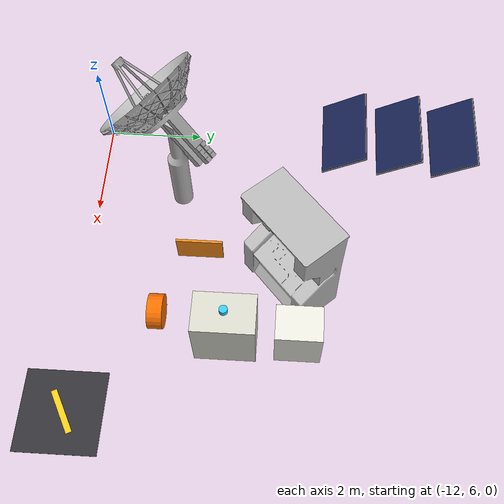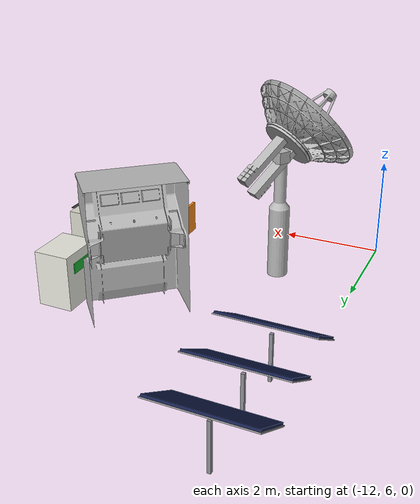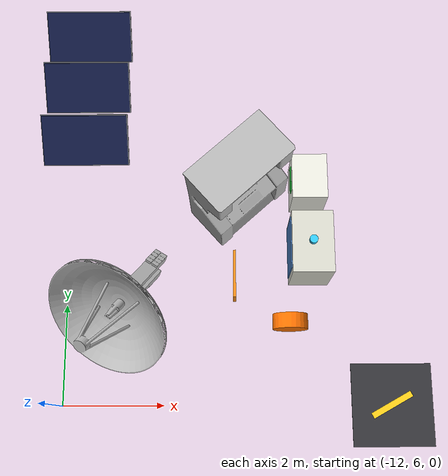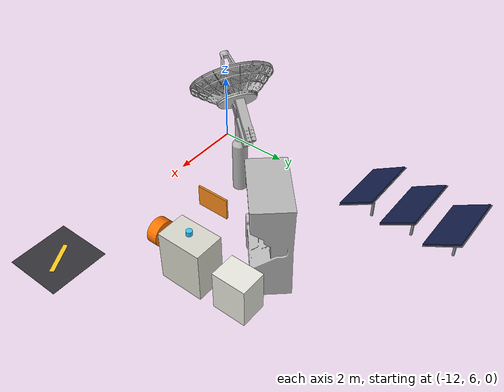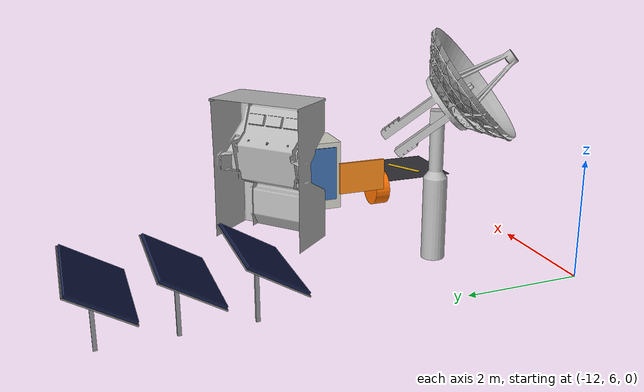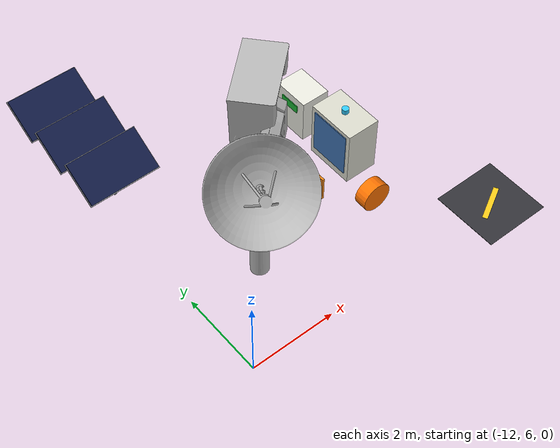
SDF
<sdf version="1.9">
 <world name="living_map">
  <model name="ona_b">
   <static>true</static>
   <link name="console">
    <pose>-8.6 10.3 0 0 0 0.7266</pose>
    <visual name="v">
     <geometry><mesh><uri>model://control_console/meshes/console.obj</uri></mesh></geometry>
    </visual>
    <collision name="c">
     <pose>0 0 1.3 0 0 0</pose>
     <geometry><box><size>1.78 1.0 2.6</size></box></geometry>
    </collision>
   </link>
   <link name="hub">
    <pose>-7.1 9.0 0.7 0 0 0</pose>
    <collision name="c"><geometry><box><size>0.8 1.2 1.4</size></box></geometry></collision>
    <visual name="v">
     <geometry><box><size>0.8 1.2 1.4</size></box></geometry>
     <material>
      <ambient>0.85 0.85 0.8 1</ambient>
      <diffuse>0.85 0.85 0.8 1</diffuse>
      <specular>0.1 0.1 0.1 1</specular>
     </material>
     <cast_shadows>false</cast_shadows>
    </visual>
   </link>
   <link name="hub_door">
    <pose>-7.51 9.0 0.75 0 0 0</pose>
    <visual name="v">
     <geometry><box><size>0.02 1.0 1.1</size></box></geometry>
     <material>
      <ambient>0.25 0.45 0.7 1</ambient>
      <diffuse>0.25 0.45 0.7 1</diffuse>
      <specular>0.1 0.1 0.1 1</specular>
     </material>
     <cast_shadows>false</cast_shadows>
    </visual>
   </link>
   <link name="led">
    <pose>-7.1 9.0 1.5 0 0 0</pose>
    <visual name="v">
     <geometry><cylinder><radius>0.08</radius><length>0.12</length></cylinder></geometry>
     <material>
      <ambient>0.2 0.8 1 1</ambient>
      <diffuse>0.2 0.8 1 1</diffuse>
      <specular>0.1 0.1 0.1 1</specular>
      <emissive>0.2 0.8 1 1</emissive>
     </material>
     <cast_shadows>false</cast_shadows>
    </visual>
   </link>
   <link name="reel">
    <pose>-7.5 7.6 0.35 1.5708 0 0</pose>
    <visual name="v">
     <geometry><cylinder><radius>0.35</radius><length>0.3</length></cylinder></geometry>
     <material>
      <ambient>1 0.45 0 1</ambient>
      <diffuse>1 0.45 0 1</diffuse>
      <specular>0.1 0.1 0.1 1</specular>
     </material>
     <cast_shadows>false</cast_shadows>
    </visual>
   </link>
   <link name="dish_mount">
    <pose>-10.4 7.8 0 0 0 -2.1318</pose>
    <visual name="v">
     <geometry><mesh><uri>model://lm_dish/meshes/dish_mount.obj</uri><scale>1.0 1.0 1.0</scale></mesh></geometry>
    </visual>
   </link>
   <link name="dish_reflector">
    <pose>-10.4 7.8 2.628 0 0.8948 -2.1318</pose>
    <visual name="v">
     <geometry>
      <mesh><uri>model://lm_dish/meshes/dish_reflector.obj</uri><scale>1.0 1.0 1.0</scale></mesh>
     </geometry>
    </visual>
   </link>
   <link name="sign">
    <pose>-8.6 8.4 1.0 0 0 0</pose>
    <visual name="v">
     <geometry><box><size>0.05 0.9 0.6</size></box></geometry>
     <material>
      <ambient>0.98 0.55 0.1 1</ambient>
      <diffuse>0.98 0.55 0.1 1</diffuse>
      <specular>0.1 0.1 0.1 1</specular>
     </material>
     <cast_shadows>false</cast_shadows>
    </visual>
   </link>
   <link name="solar0">
    <pose>-11.6 11.2 1.0 0 0.55 -1.5708</pose>
    <visual name="panel">
     <geometry><box><size>1.0 1.7 0.04</size></box></geometry>
     <material>
      <ambient>0.08 0.12 0.3 1</ambient>
      <diffuse>0.08 0.12 0.3 1</diffuse>
      <specular>0.1 0.1 0.1 1</specular>
      <emissive>0.02 0.03 0.08 1</emissive>
     </material>
     <cast_shadows>false</cast_shadows>
    </visual>
    <visual name="frame">
     <pose>0 0 -0.03 0 0 0</pose>
     <geometry><box><size>1.04 1.74 0.02</size></box></geometry>
     <material>
      <ambient>0.55 0.56 0.58 1</ambient>
      <diffuse>0.55 0.56 0.58 1</diffuse>
      <specular>0.1 0.1 0.1 1</specular>
     </material>
     <cast_shadows>false</cast_shadows>
    </visual>
   </link>
   <link name="solar_leg0">
    <pose>-11.6 11.299999999999999 0.45 0 0 0</pose>
    <visual name="v">
     <geometry><box><size>0.06 0.06 0.9</size></box></geometry>
     <material>
      <ambient>0.55 0.56 0.58 1</ambient>
      <diffuse>0.55 0.56 0.58 1</diffuse>
      <specular>0.1 0.1 0.1 1</specular>
     </material>
     <cast_shadows>false</cast_shadows>
    </visual>
   </link>
   <link name="solar1">
    <pose>-11.6 12.35 1.0 0 0.55 -1.5708</pose>
    <visual name="panel">
     <geometry><box><size>1.0 1.7 0.04</size></box></geometry>
     <material>
      <ambient>0.08 0.12 0.3 1</ambient>
      <diffuse>0.08 0.12 0.3 1</diffuse>
      <specular>0.1 0.1 0.1 1</specular>
      <emissive>0.02 0.03 0.08 1</emissive>
     </material>
     <cast_shadows>false</cast_shadows>
    </visual>
    <visual name="frame">
     <pose>0 0 -0.03 0 0 0</pose>
     <geometry><box><size>1.04 1.74 0.02</size></box></geometry>
     <material>
      <ambient>0.55 0.56 0.58 1</ambient>
      <diffuse>0.55 0.56 0.58 1</diffuse>
      <specular>0.1 0.1 0.1 1</specular>
     </material>
     <cast_shadows>false</cast_shadows>
    </visual>
   </link>
   <link name="solar_leg1">
    <pose>-11.6 12.45 0.45 0 0 0</pose>
    <visual name="v">
     <geometry><box><size>0.06 0.06 0.9</size></box></geometry>
     <material>
      <ambient>0.55 0.56 0.58 1</ambient>
      <diffuse>0.55 0.56 0.58 1</diffuse>
      <specular>0.1 0.1 0.1 1</specular>
     </material>
     <cast_shadows>false</cast_shadows>
    </visual>
   </link>
   <link name="solar2">
    <pose>-11.6 13.5 1.0 0 0.55 -1.5708</pose>
    <visual name="panel">
     <geometry><box><size>1.0 1.7 0.04</size></box></geometry>
     <material>
      <ambient>0.08 0.12 0.3 1</ambient>
      <diffuse>0.08 0.12 0.3 1</diffuse>
      <specular>0.1 0.1 0.1 1</specular>
      <emissive>0.02 0.03 0.08 1</emissive>
     </material>
     <cast_shadows>false</cast_shadows>
    </visual>
    <visual name="frame">
     <pose>0 0 -0.03 0 0 0</pose>
     <geometry><box><size>1.04 1.74 0.02</size></box></geometry>
     <material>
      <ambient>0.55 0.56 0.58 1</ambient>
      <diffuse>0.55 0.56 0.58 1</diffuse>
      <specular>0.1 0.1 0.1 1</specular>
     </material>
     <cast_shadows>false</cast_shadows>
    </visual>
   </link>
   <link name="solar_leg2">
    <pose>-11.6 13.6 0.45 0 0 0</pose>
    <visual name="v">
     <geometry><box><size>0.06 0.06 0.9</size></box></geometry>
     <material>
      <ambient>0.55 0.56 0.58 1</ambient>
      <diffuse>0.55 0.56 0.58 1</diffuse>
      <specular>0.1 0.1 0.1 1</specular>
     </material>
     <cast_shadows>false</cast_shadows>
    </visual>
   </link>
   <link name="battery">
    <pose>-7.1 10.4 0.55 0 0 0</pose>
    <collision name="c"><geometry><box><size>0.7 0.9 1.1</size></box></geometry></collision>
    <visual name="v">
     <geometry><box><size>0.7 0.9 1.1</size></box></geometry>
     <material>
      <ambient>0.92 0.92 0.88 1</ambient>
      <diffuse>0.92 0.92 0.88 1</diffuse>
      <specular>0.1 0.1 0.1 1</specular>
     </material>
     <cast_shadows>false</cast_shadows>
    </visual>
   </link>
   <link name="battery_label">
    <pose>-7.46 10.4 0.8 0 0 0</pose>
    <visual name="v">
     <geometry><box><size>0.02 0.5 0.2</size></box></geometry>
     <material>
      <ambient>0.1 0.7 0.2 1</ambient>
      <diffuse>0.1 0.7 0.2 1</diffuse>
      <specular>0.1 0.1 0.1 1</specular>
     </material>
     <cast_shadows>false</cast_shadows>
    </visual>
   </link>
   <link name="charger">
    <pose>-5.5 6.0 0.004 0 0 0</pose>
    <visual name="pad">
     <geometry><box><size>1.6 1.6 0.008</size></box></geometry>
     <material>
      <ambient>0.2 0.2 0.22 1</ambient>
      <diffuse>0.2 0.2 0.22 1</diffuse>
      <specular>0.1 0.1 0.1 1</specular>
     </material>
     <cast_shadows>false</cast_shadows>
    </visual>
    <visual name="bolt">
     <pose>0 0 0.005 0 0 0.5</pose>
     <geometry><box><size>0.9 0.12 0.004</size></box></geometry>
     <material>
      <ambient>1 0.8 0.1 1</ambient>
      <diffuse>1 0.8 0.1 1</diffuse>
      <specular>0.1 0.1 0.1 1</specular>
      <emissive>0.5 0.4 0 1</emissive>
     </material>
     <cast_shadows>false</cast_shadows>
    </visual>
   </link>
  </model>
 </world>
</sdf>
